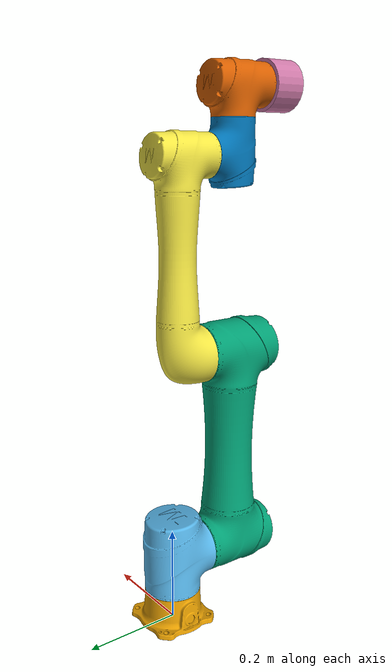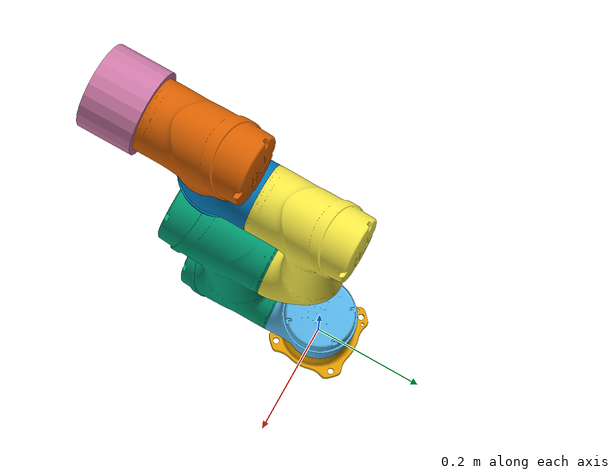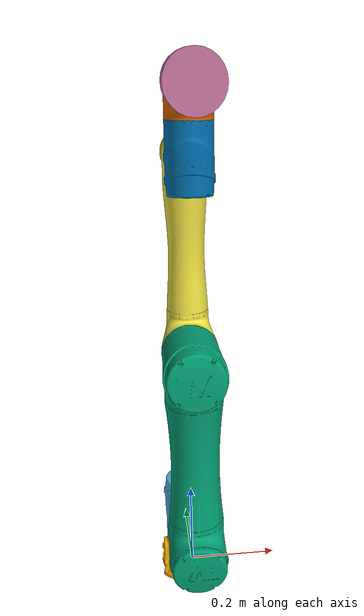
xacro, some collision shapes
<?xml version="1.0"?>
<robot xmlns:xacro="http://www.ros.org/wiki/xacro" name="tm5s">

  <xacro:arg name="ns" default="" />
  <xacro:arg name="prefix" default="" />
  <xacro:arg name="trans_hw_iface" default="hardware_interface/PositionJointInterface" />

  <xacro:include filename="$(find tm_description)/xacro/macro.gazebo.xacro" />
  <xacro:include filename="$(find tm_description)/xacro/macro.transmission.xacro" />

  <!-- tm5s -->
  <!-- If the user want to use newly generated named robot description file as user_defined.urdf.xacro, -->
  <!-- you must modify 'macro.tm5s-nominal.urdf.xacro' to 'user_defined.urdf.xacro'  -->
  <xacro:include filename="$(find tm_description)/xacro/macro.tm5s-nominal.urdf.xacro" />

  <xacro:tmr_gazebo ns="$(arg ns)" prefix="$(arg prefix)" />
  <xacro:tmr_transmission prefix="$(arg prefix)" hw_iface="$(arg trans_hw_iface)" />

  <!-- Arm -->
  <xacro:tm5s ns="$(arg ns)" prefix="$(arg prefix)"/>

</robot>

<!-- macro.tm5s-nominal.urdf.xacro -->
<robot xmlns:xacro="http://www.ros.org/wiki/xacro">

  <xacro:include filename="$(find tm_description)/xacro/macro.inertial.xacro" />

  <xacro:macro name="tm5s" params="ns prefix
    joint_1_lower_limit:=${radians(-360)}    joint_1_upper_limit:=${radians(360)}
    joint_2_lower_limit:=${radians(-360)}    joint_2_upper_limit:=${radians(360)}
    joint_3_lower_limit:=${radians(-158)}    joint_3_upper_limit:=${radians(158)}
    joint_4_lower_limit:=${radians(-360)}    joint_4_upper_limit:=${radians(360)}
    joint_5_lower_limit:=${radians(-360)}    joint_5_upper_limit:=${radians(360)}
    joint_6_lower_limit:=${radians(-360)}    joint_6_upper_limit:=${radians(360)}
    joint_1_velocity_limit:=${radians(210)}
    joint_2_velocity_limit:=${radians(210)}
    joint_3_velocity_limit:=${radians(210)}
    joint_4_velocity_limit:=${radians(225)}
    joint_5_velocity_limit:=${radians(225)}
    joint_6_velocity_limit:=${radians(450)}
    joint_1_effort_limit:=${157}
    joint_2_effort_limit:=${157}
    joint_3_effort_limit:=${157}
    joint_4_effort_limit:=${54}
    joint_5_effort_limit:=${54}
    joint_6_effort_limit:=${34}
    safety_limits:=false safety_pos_margin:=0.15
    safety_k_position:=20">

    <xacro:property name="damping_factor" value="0.000"/>
    <xacro:property name="d1" value="${damping_factor*0.1}"/>
    <xacro:property name="d2" value="${damping_factor*0.1}"/>
    <xacro:property name="d3" value="${damping_factor*0.1}"/>
    <xacro:property name="d4" value="${damping_factor*0.1}"/>
    <xacro:property name="d5" value="${damping_factor*0.1}"/>
    <xacro:property name="d6" value="${damping_factor*0.1}"/>

    <xacro:property name="friction_factor" value="0.000"/>
    <xacro:property name="f1" value="${friction_factor*0.1}"/>
    <xacro:property name="f2" value="${friction_factor*0.1}"/>
    <xacro:property name="f3" value="${friction_factor*0.1}"/>
    <xacro:property name="f4" value="${friction_factor*0.1}"/>
    <xacro:property name="f5" value="${friction_factor*0.1}"/>
    <xacro:property name="f6" value="${friction_factor*0.1}"/>

    <!-- Inertia parameters -->
    <xacro:property name="mass_0" value="1.0" />
    <xacro:property name="mass_1" value="4.320" />
    <xacro:property name="mass_2" value="9.796" />
    <xacro:property name="mass_3" value="2.778" />
    <xacro:property name="mass_4" value="1.770" />
    <xacro:property name="mass_5" value="1.770" />
    <xacro:property name="mass_6" value="0.720" />

    <xacro:property name="unit_factor" value="0.000001"/>
    <xacro:property name="ixx_1" value="${8439.2993*unit_factor}" />
    <xacro:property name="ixx_2" value="${29227.499*unit_factor}" />
    <xacro:property name="ixx_3" value="${4173.2753*unit_factor}" />
    <xacro:property name="ixx_4" value="${2046.0318*unit_factor}" />
    <xacro:property name="ixx_5" value="${2046.0318*unit_factor}" />
    <xacro:property name="ixx_6" value="${703.44734*unit_factor}" />

    <xacro:property name="iyy_1" value="${13793.964*unit_factor}" />
    <xacro:property name="iyy_2" value="${406910.57*unit_factor}" />
    <xacro:property name="iyy_3" value="${61909.685*unit_factor}" />
    <xacro:property name="iyy_4" value="${3171.8293*unit_factor}" />
    <xacro:property name="iyy_5" value="${3171.8293*unit_factor}" />
    <xacro:property name="iyy_6" value="${1711.0225*unit_factor}" />

    <xacro:property name="izz_1" value="${14241.226*unit_factor}" />
    <xacro:property name="izz_2" value="${418507.58*unit_factor}" />
    <xacro:property name="izz_3" value="${63318.609*unit_factor}" />
    <xacro:property name="izz_4" value="${3478.9518*unit_factor}" />
    <xacro:property name="izz_5" value="${3478.9518*unit_factor}" />
    <xacro:property name="izz_6" value="${1854.4783*unit_factor}" />

<!--LinkDescription-->
  <link name="${prefix}link_0">
    <visual>
      <geometry>
        <mesh filename="package://tm_description/meshes/tm5s/visual/tm5s-base.obj" />
      </geometry>
    </visual>
    <collision>
      <geometry>
        <cylinder radius="0.0635" length="0.072"/>
      </geometry>
      <origin rpy="0 0 0" xyz="0 0 0.036" />
    </collision>
    <collision>
      <geometry>
        <box size="0.02 0.05 0.065"/>
      </geometry>
      <origin rpy="0 0 0" xyz="-0.0615 0 0.0325" />
    </collision>
    <collision>
      <geometry>
        <box size="0.177 0.025 0.012"/>
      </geometry>
      <origin rpy="0 0 ${radians(45)}" xyz="0 0 0.006" />
    </collision>
    <collision>
      <geometry>
        <box size="0.177 0.025 0.012"/>
      </geometry>
      <origin rpy="0 0 ${radians(-45)}" xyz="0 0 0.006" />
    </collision>
    <collision>
      <geometry>
        <box size="0.143 0.1075 0.012"/>
      </geometry>
      <origin rpy="0 0 0" xyz="0 0 0.006" />
    </collision>
    <collision>
      <geometry>
        <box size="0.1075 0.143 0.012"/>
      </geometry>
      <origin rpy="0 0 0" xyz="0 0 0.006" />
    </collision>
<!--inertial-->
    <xacro:cylinder_inertial_z radius="0.06" length="0.05" mass="${mass_0}">
      <origin rpy="0.000000 0.000000 0.000000" xyz="0.000000 0.000000 0.000000" />
    </xacro:cylinder_inertial_z>
  </link>
  <joint name="${prefix}joint_1" type="revolute">
    <parent link="${prefix}link_0" />
    <child link="${prefix}link_1" />
    <origin rpy="0.000000 -0.000000 0.000000" xyz="0.000000 0.000000 0.148400" />
    <axis xyz="0 0 1" />
<!--limit-->
    <limit lower="${joint_1_lower_limit}" upper="${joint_1_upper_limit}" velocity="${joint_1_velocity_limit}" effort="${joint_1_effort_limit}" />
    <xacro:if value="${safety_limits}">
      <safety_controller soft_lower_limit="${joint_1_lower_limit + safety_pos_margin}" soft_upper_limit="${joint_1_upper_limit - safety_pos_margin}" k_position="${safety_k_position}" k_velocity="0.0" />
    </xacro:if>
    <dynamics damping="${d1}" friction="${f1}" />
  </joint>
  <link name="${prefix}link_1">
    <visual>
      <geometry>
        <mesh filename="package://tm_description/meshes/tm5s/visual/tm5s-j1.obj" />
      </geometry>
    </visual>
    <collision>
      <geometry>
        <cylinder radius="0.0635" length="0.17475"/>
      </geometry>
      <origin rpy="0 0 0" xyz="0 0 0.00275" />
    </collision>
    <collision>
      <geometry>
        <cylinder radius="0.0635" length="0.07"/>
      </geometry>
      <origin rpy="${radians(90)} 0 0" xyz="0 -0.037 0" />
    </collision>
    <inertial>
      <origin rpy="0.000000 0.000000 0.000000" xyz="0.000000 0.000000 0.000000" />
      <mass value="${mass_1}" />
      <inertia ixx="${ixx_1}" ixy="0.000000" ixz="0.000000" iyy="${iyy_1}" iyz="0.000000" izz="${izz_1}" />
    </inertial>
  </link>
  <joint name="${prefix}joint_2" type="revolute">
    <parent link="${prefix}link_1" />
    <child link="${prefix}link_2" />
    <origin rpy="-1.570796 -1.570796 0.000000" xyz="0.000000 0.000000 0.000000" />
    <axis xyz="0 0 1" />
<!--limit-->
    <limit lower="${joint_2_lower_limit}" upper="${joint_2_upper_limit}" velocity="${joint_2_velocity_limit}" effort="${joint_2_effort_limit}" />
    <xacro:if value="${safety_limits}">
      <safety_controller soft_lower_limit="${joint_2_lower_limit + safety_pos_margin}" soft_upper_limit="${joint_2_upper_limit - safety_pos_margin}" k_position="${safety_k_position}" k_velocity="0.0" />
    </xacro:if>
    <dynamics damping="${d2}" friction="${f2}" />
  </joint>
  <link name="${prefix}link_2">
    <visual>
      <geometry>
        <mesh filename="package://tm_description/meshes/tm5s/visual/tm5s-a1.obj" />
      </geometry>
    </visual>
    <collision>
      <geometry>
        <cylinder radius="0.0635" length="0.17475"/>
      </geometry>
      <origin rpy="0 0 0" xyz="0 0 -0.15175" />
    </collision>
    <collision>
      <geometry>
        <cylinder radius="0.0635" length="0.429"/>
      </geometry>
      <origin rpy="0 ${radians(90)} 0" xyz="${0.429/2} 0 -0.15" />
    </collision>
    <collision>
      <geometry>
        <cylinder radius="0.0635" length="0.17475"/>
      </geometry>
      <origin rpy="0 0 0" xyz="0.429 0 -0.15175" />
    </collision>
    <inertial>
      <origin rpy="0.000000 0.000000 0.000000" xyz="0.000000 0.000000 0.000000" />
      <mass value="${mass_2}" />
      <inertia ixx="${ixx_2}" ixy="0.000000" ixz="0.000000" iyy="${iyy_2}" iyz="0.000000" izz="${izz_2}" />
    </inertial>
  </link>
  <joint name="${prefix}joint_3" type="revolute">
    <parent link="${prefix}link_2" />
    <child link="${prefix}link_3" />
    <origin rpy="0.000000 -0.000000 0.000000" xyz="0.429000 0.000000 0.000000" />
    <axis xyz="0 0 1" />
<!--limit-->
    <limit lower="${joint_3_lower_limit}" upper="${joint_3_upper_limit}" velocity="${joint_3_velocity_limit}" effort="${joint_3_effort_limit}" />
    <xacro:if value="${safety_limits}">
      <safety_controller soft_lower_limit="${joint_3_lower_limit + safety_pos_margin}" soft_upper_limit="${joint_3_upper_limit - safety_pos_margin}" k_position="${safety_k_position}" k_velocity="0.0" />
    </xacro:if>
    <dynamics damping="${d3}" friction="${f3}" />
  </joint>
  <link name="${prefix}link_3">
    <visual>
      <geometry>
        <mesh filename="package://tm_description/meshes/tm5s/visual/tm5s-a2.obj" />
      </geometry>
    </visual>
    <collision>
      <geometry>
        <cylinder radius="0.0635" length="0.101"/>
      </geometry>
      <origin rpy="0 0 0" xyz="0 0 -0.022" />
    </collision>
    <collision>
      <geometry>
        <cylinder radius="0.044" length="0.386"/>
      </geometry>
      <origin rpy="0 ${radians(90)} 0" xyz="${0.386/2} 0 -0.01625" />
    </collision>
    <collision>
      <geometry>
        <cylinder radius="0.05" length="0.136"/>
      </geometry>
      <origin rpy="0 0 0" xyz="0.386 0 -0.022" />
    </collision>
    <inertial>
      <origin rpy="0.000000 0.000000 0.000000" xyz="0.000000 0.000000 0.000000" />
      <mass value="${mass_3}" />
      <inertia ixx="${ixx_3}" ixy="0.000000" ixz="0.000000" iyy="${iyy_3}" iyz="0.000000" izz="${izz_3}" />
    </inertial>
  </link>
  <joint name="${prefix}joint_4" type="revolute">
    <parent link="${prefix}link_3" />
    <child link="${prefix}link_4" />
    <origin rpy="0.000000 -0.000000 1.570796" xyz="0.386000 0.000000 -0.147800" />
    <axis xyz="0 0 1" />
<!--limit-->
    <limit lower="${joint_4_lower_limit}" upper="${joint_4_upper_limit}" velocity="${joint_4_velocity_limit}" effort="${joint_4_effort_limit}" />
    <xacro:if value="${safety_limits}">
      <safety_controller soft_lower_limit="${joint_4_lower_limit + safety_pos_margin}" soft_upper_limit="${joint_4_upper_limit - safety_pos_margin}" k_position="${safety_k_position}" k_velocity="0.0" />
    </xacro:if>
    <dynamics damping="${d4}" friction="${f4}" />
  </joint>
  <link name="${prefix}link_4">
    <visual>
      <geometry>
        <mesh filename="package://tm_description/meshes/tm5s/visual/tm5s-j5.obj" />
      </geometry>
    </visual>
    <collision>
      <geometry>
        <cylinder radius="0.05" length="0.06"/>
      </geometry>
      <origin rpy="0 0 0" xyz="0 0 0.031" />
    </collision>
    <collision>
      <geometry>
        <cylinder radius="0.05" length="0.135"/>
      </geometry>
      <origin rpy="${radians(90)} 0 0" xyz="0 -0.0055 0" />
    </collision>
    <inertial>
      <origin rpy="0.000000 0.000000 0.000000" xyz="0.000000 0.000000 0.000000" />
      <mass value="${mass_4}" />
      <inertia ixx="${ixx_4}" ixy="0.000000" ixz="0.000000" iyy="${iyy_4}" iyz="0.000000" izz="${izz_4}" />
    </inertial>
  </link>
  <joint name="${prefix}joint_5" type="revolute">
    <parent link="${prefix}link_4" />
    <child link="${prefix}link_5" />
    <origin rpy="1.570796 -0.000000 0.000000" xyz="0.000000 -0.131500 0.000000" />
    <axis xyz="0 0 1" />
<!--limit-->
    <limit lower="${joint_5_lower_limit}" upper="${joint_5_upper_limit}" velocity="${joint_5_velocity_limit}" effort="${joint_5_effort_limit}" />
    <xacro:if value="${safety_limits}">
      <safety_controller soft_lower_limit="${joint_5_lower_limit + safety_pos_margin}" soft_upper_limit="${joint_5_upper_limit - safety_pos_margin}" k_position="${safety_k_position}" k_velocity="0.0" />
    </xacro:if>
    <dynamics damping="${d5}" friction="${f5}" />
  </joint>
  <link name="${prefix}link_5">
    <visual>
      <geometry>
        <mesh filename="package://tm_description/meshes/tm5s/visual/tm5s-j6.obj" />
      </geometry>
    </visual>
    <collision>
      <geometry>
        <cylinder radius="0.05" length="0.06"/>
      </geometry>
      <origin rpy="0 0 0" xyz="0 0 -0.031" />
    </collision>
    <collision>
      <geometry>
        <cylinder radius="0.05" length="0.135"/>
      </geometry>
      <origin rpy="${radians(90)} 0 0" xyz="0 -0.0055 0" />
    </collision>
    <inertial>
      <origin rpy="0.000000 0.000000 0.000000" xyz="0.000000 0.000000 0.000000" />
      <mass value="${mass_5}" />
      <inertia ixx="${ixx_5}" ixy="0.000000" ixz="0.000000" iyy="${iyy_5}" iyz="0.000000" izz="${izz_5}" />
    </inertial>
  </link>
  <joint name="${prefix}joint_6" type="revolute">
    <parent link="${prefix}link_5" />
    <child link="${prefix}link_6" />
    <origin rpy="1.570796 -0.000000 0.000000" xyz="0.000000 -0.134950 0.000000" />
    <axis xyz="0 0 1" />
<!--limit-->
    <limit lower="${joint_6_lower_limit}" upper="${joint_6_upper_limit}" velocity="${joint_6_velocity_limit}" effort="${joint_6_effort_limit}" />
    <xacro:if value="${safety_limits}">
      <safety_controller soft_lower_limit="${joint_6_lower_limit + safety_pos_margin}" soft_upper_limit="${joint_6_upper_limit - safety_pos_margin}" k_position="${safety_k_position}" k_velocity="0.0" />
    </xacro:if>
    <dynamics damping="${d6}" friction="${f6}" />
  </joint>
  <link name="${prefix}link_6">
    <visual>
      <geometry>
        <mesh filename="package://tm_description/meshes/tm5s/visual/tm5s-io.obj" />
      </geometry>
    </visual>
    <collision>
      <geometry>
        <cylinder radius="0.05" length="0.065"/>
      </geometry>
      <origin rpy="0 0 0" xyz="0 0 -0.032" />
    </collision>
    <collision>
      <geometry>
        <box size="0.075 0.059 0.1175"/>
      </geometry>
      <origin rpy="0 0 0" xyz="-0.001 0.076 -0.008" />
    </collision>
    <inertial>
      <origin rpy="0.000000 0.000000 0.000000" xyz="0.000000 0.000000 0.000000" />
      <mass value="${mass_6}" />
      <inertia ixx="${ixx_6}" ixy="0.000000" ixz="0.000000" iyy="${iyy_6}" iyz="0.000000" izz="${izz_6}" />
    </inertial>
  </link>
  <link name="${prefix}base" />
  <joint name="${prefix}base_fixed_joint" type="fixed">
    <parent link="${prefix}base" />
    <child link="${prefix}link_0" />
    <origin rpy="0.000000 0.000000 0.000000" xyz="0.000000 0.000000 0.000000" />
  </joint>
  <link name="${prefix}flange" />
  <joint name="${prefix}flange_fixed_joint" type="fixed">
    <parent link="${prefix}link_6" />
    <child link="${prefix}flange" />
    <origin rpy="0.000000 0.000000 0.000000" xyz="0.000000 0.000000 0.000000" />
  </joint>
<!--LinkDescription-->

  </xacro:macro>

</robot>
